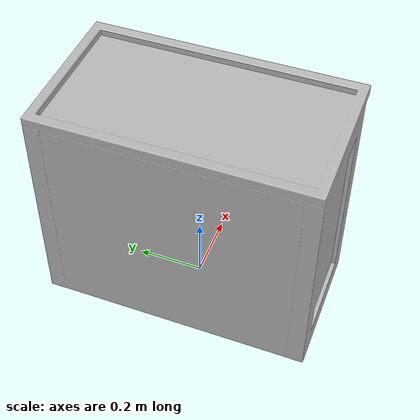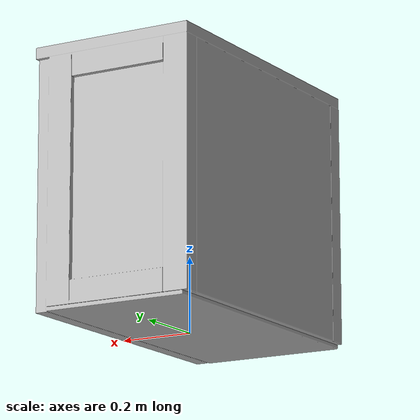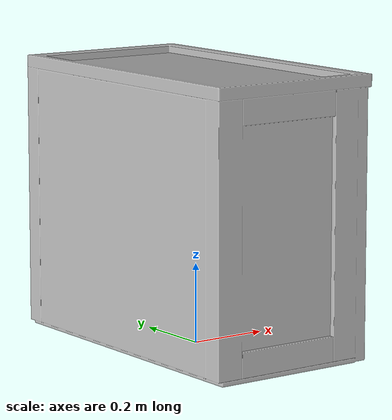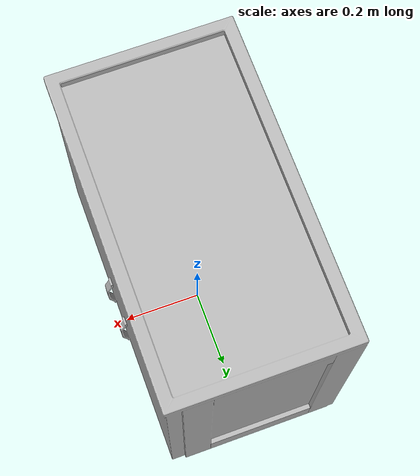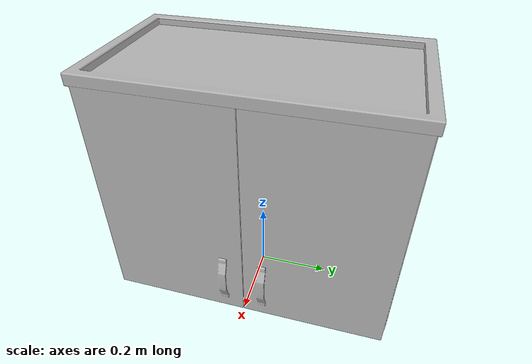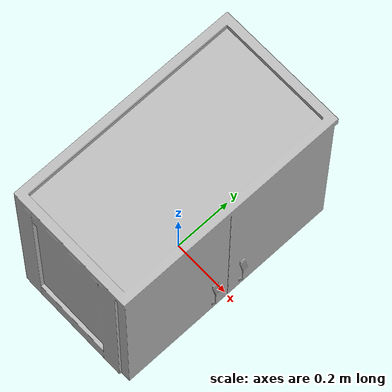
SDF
<?xml version='1.0'?>
<sdf version='1.4'>
  <model name='250'>
    <pose>0 0 0 0 0 0</pose>
    <static>true</static>
    <link name='link'>
      <collision name='collision'>
        <pose>0 0 0 0 0 0</pose>
        <geometry>
          <box>
            <size>0.458526 0.800012 2</size>
          </box>
        </geometry>
      </collision>
      <visual name='visual'>
        <pose>0 0 0 0 0 0</pose>
        <geometry>
          <mesh><uri>model://250/250.dae</uri></mesh>
        </geometry>
      </visual>
    </link>
  </model>
</sdf>
